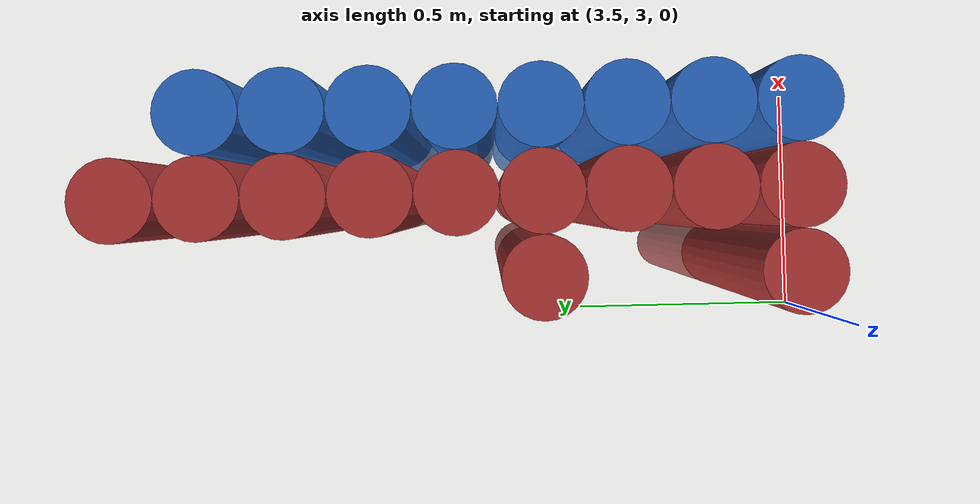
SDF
<sdf version="1.6">
 <world name="default">
  <model name="ground_plane">
   <static>1</static>
   <link name="link">
    <collision name="collision">
     <geometry><plane><normal>0 0 1</normal><size>100 100</size></plane></geometry>
     <surface><friction><ode><mu>100</mu><mu2>50</mu2></ode></friction></surface>
    </collision>
    <visual name="visual">
     <cast_shadows>0</cast_shadows>
     <geometry><plane><normal>0 0 1</normal><size>100 100</size></plane></geometry>
     <material>
      <script><uri>file://media/materials/scripts/gazebo.material</uri><name>Gazebo/Grey</name></script>
     </material>
    </visual>
   </link>
  </model>
  <model name="unit_cylinder_156">
   <static>1</static>
   <pose>3.925000 3.175000 0.000000 0.000000 0.000000 0.000000</pose>
   <link name="link">
    <inertial>
     <mass>1</mass>
     <inertia><ixx>0.145833</ixx><ixy>0</ixy><ixz>0</ixz><iyy>0.145833</iyy><iyz>0</iyz><izz>0.125</izz></inertia>
    </inertial>
    <collision name="collision">
     <geometry><cylinder><radius>0.075000</radius><length>1.5</length></cylinder></geometry>
    </collision>
    <visual name="visual">
     <geometry><cylinder><radius>0.075000</radius><length>1.5</length></cylinder></geometry>
     <material>
      <ambient>0.152000 0.379000 0.720000 1</ambient>
      <diffuse>0.152000 0.379000 0.720000 1</diffuse>
     </material>
     <material>
      <script><name>Gazebo/Grey</name><uri>file://media/materials/scripts/gazebo.material</uri></script>
     </material>
    </visual>
   </link>
  </model>
  <model name="unit_cylinder_158">
   <static>1</static>
   <pose>3.925000 3.325000 0.000000 0.000000 0.000000 0.000000</pose>
   <link name="link">
    <inertial>
     <mass>1</mass>
     <inertia><ixx>0.145833</ixx><ixy>0</ixy><ixz>0</ixz><iyy>0.145833</iyy><iyz>0</iyz><izz>0.125</izz></inertia>
    </inertial>
    <collision name="collision">
     <geometry><cylinder><radius>0.075000</radius><length>1.5</length></cylinder></geometry>
    </collision>
    <visual name="visual">
     <geometry><cylinder><radius>0.075000</radius><length>1.5</length></cylinder></geometry>
     <material>
      <ambient>0.152000 0.379000 0.720000 1</ambient>
      <diffuse>0.152000 0.379000 0.720000 1</diffuse>
     </material>
     <material>
      <script><name>Gazebo/Grey</name><uri>file://media/materials/scripts/gazebo.material</uri></script>
     </material>
    </visual>
   </link>
  </model>
  <model name="unit_cylinder_160">
   <static>1</static>
   <pose>3.925000 3.475000 0.000000 0.000000 0.000000 0.000000</pose>
   <link name="link">
    <inertial>
     <mass>1</mass>
     <inertia><ixx>0.145833</ixx><ixy>0</ixy><ixz>0</ixz><iyy>0.145833</iyy><iyz>0</iyz><izz>0.125</izz></inertia>
    </inertial>
    <collision name="collision">
     <geometry><cylinder><radius>0.075000</radius><length>1.5</length></cylinder></geometry>
    </collision>
    <visual name="visual">
     <geometry><cylinder><radius>0.075000</radius><length>1.5</length></cylinder></geometry>
     <material>
      <ambient>0.152000 0.379000 0.720000 1</ambient>
      <diffuse>0.152000 0.379000 0.720000 1</diffuse>
     </material>
     <material>
      <script><name>Gazebo/Grey</name><uri>file://media/materials/scripts/gazebo.material</uri></script>
     </material>
    </visual>
   </link>
  </model>
  <model name="unit_cylinder_162">
   <static>1</static>
   <pose>3.925000 3.625000 0.000000 0.000000 0.000000 0.000000</pose>
   <link name="link">
    <inertial>
     <mass>1</mass>
     <inertia><ixx>0.145833</ixx><ixy>0</ixy><ixz>0</ixz><iyy>0.145833</iyy><iyz>0</iyz><izz>0.125</izz></inertia>
    </inertial>
    <collision name="collision">
     <geometry><cylinder><radius>0.075000</radius><length>1.5</length></cylinder></geometry>
    </collision>
    <visual name="visual">
     <geometry><cylinder><radius>0.075000</radius><length>1.5</length></cylinder></geometry>
     <material>
      <ambient>0.152000 0.379000 0.720000 1</ambient>
      <diffuse>0.152000 0.379000 0.720000 1</diffuse>
     </material>
     <material>
      <script><name>Gazebo/Grey</name><uri>file://media/materials/scripts/gazebo.material</uri></script>
     </material>
    </visual>
   </link>
  </model>
  <model name="unit_cylinder_164">
   <static>1</static>
   <pose>3.925000 3.775000 0.000000 0.000000 0.000000 0.000000</pose>
   <link name="link">
    <inertial>
     <mass>1</mass>
     <inertia><ixx>0.145833</ixx><ixy>0</ixy><ixz>0</ixz><iyy>0.145833</iyy><iyz>0</iyz><izz>0.125</izz></inertia>
    </inertial>
    <collision name="collision">
     <geometry><cylinder><radius>0.075000</radius><length>1.5</length></cylinder></geometry>
    </collision>
    <visual name="visual">
     <geometry><cylinder><radius>0.075000</radius><length>1.5</length></cylinder></geometry>
     <material>
      <ambient>0.152000 0.379000 0.720000 1</ambient>
      <diffuse>0.152000 0.379000 0.720000 1</diffuse>
     </material>
     <material>
      <script><name>Gazebo/Grey</name><uri>file://media/materials/scripts/gazebo.material</uri></script>
     </material>
    </visual>
   </link>
  </model>
  <model name="unit_cylinder_166">
   <static>1</static>
   <pose>3.925000 3.925000 0.000000 0.000000 0.000000 0.000000</pose>
   <link name="link">
    <inertial>
     <mass>1</mass>
     <inertia><ixx>0.145833</ixx><ixy>0</ixy><ixz>0</ixz><iyy>0.145833</iyy><iyz>0</iyz><izz>0.125</izz></inertia>
    </inertial>
    <collision name="collision">
     <geometry><cylinder><radius>0.075000</radius><length>1.5</length></cylinder></geometry>
    </collision>
    <visual name="visual">
     <geometry><cylinder><radius>0.075000</radius><length>1.5</length></cylinder></geometry>
     <material>
      <ambient>0.152000 0.379000 0.720000 1</ambient>
      <diffuse>0.152000 0.379000 0.720000 1</diffuse>
     </material>
     <material>
      <script><name>Gazebo/Grey</name><uri>file://media/materials/scripts/gazebo.material</uri></script>
     </material>
    </visual>
   </link>
  </model>
  <model name="unit_cylinder_168">
   <static>1</static>
   <pose>3.925000 4.075000 0.000000 0.000000 0.000000 0.000000</pose>
   <link name="link">
    <inertial>
     <mass>1</mass>
     <inertia><ixx>0.145833</ixx><ixy>0</ixy><ixz>0</ixz><iyy>0.145833</iyy><iyz>0</iyz><izz>0.125</izz></inertia>
    </inertial>
    <collision name="collision">
     <geometry><cylinder><radius>0.075000</radius><length>1.5</length></cylinder></geometry>
    </collision>
    <visual name="visual">
     <geometry><cylinder><radius>0.075000</radius><length>1.5</length></cylinder></geometry>
     <material>
      <ambient>0.152000 0.379000 0.720000 1</ambient>
      <diffuse>0.152000 0.379000 0.720000 1</diffuse>
     </material>
     <material>
      <script><name>Gazebo/Grey</name><uri>file://media/materials/scripts/gazebo.material</uri></script>
     </material>
    </visual>
   </link>
  </model>
  <model name="unit_cylinder_170">
   <static>1</static>
   <pose>3.925000 4.225000 0.000000 0.000000 0.000000 0.000000</pose>
   <link name="link">
    <inertial>
     <mass>1</mass>
     <inertia><ixx>0.145833</ixx><ixy>0</ixy><ixz>0</ixz><iyy>0.145833</iyy><iyz>0</iyz><izz>0.125</izz></inertia>
    </inertial>
    <collision name="collision">
     <geometry><cylinder><radius>0.075000</radius><length>1.5</length></cylinder></geometry>
    </collision>
    <visual name="visual">
     <geometry><cylinder><radius>0.075000</radius><length>1.5</length></cylinder></geometry>
     <material>
      <ambient>0.152000 0.379000 0.720000 1</ambient>
      <diffuse>0.152000 0.379000 0.720000 1</diffuse>
     </material>
     <material>
      <script><name>Gazebo/Grey</name><uri>file://media/materials/scripts/gazebo.material</uri></script>
     </material>
    </visual>
   </link>
  </model>
  <model name="unit_cylinder_312">
   <static>1</static>
   <pose>3.625000 3.175000 0.000000 0.000000 0.000000 0.000000</pose>
   <link name="link">
    <inertial>
     <mass>1</mass>
     <inertia><ixx>0.145833</ixx><ixy>0</ixy><ixz>0</ixz><iyy>0.145833</iyy><iyz>0</iyz><izz>0.125</izz></inertia>
    </inertial>
    <collision name="collision">
     <geometry><cylinder><radius>0.075000</radius><length>1.5</length></cylinder></geometry>
    </collision>
    <visual name="visual">
     <geometry><cylinder><radius>0.075000</radius><length>1.5</length></cylinder></geometry>
     <material>
      <ambient>0.648000 0.192000 0.192000 1</ambient>
      <diffuse>0.648000 0.192000 0.192000 1</diffuse>
     </material>
     <material>
      <script><name>Gazebo/Grey</name><uri>file://media/materials/scripts/gazebo.material</uri></script>
     </material>
    </visual>
   </link>
  </model>
  <model name="unit_cylinder_313">
   <static>1</static>
   <pose>3.625000 3.625000 0.000000 0.000000 0.000000 0.000000</pose>
   <link name="link">
    <inertial>
     <mass>1</mass>
     <inertia><ixx>0.145833</ixx><ixy>0</ixy><ixz>0</ixz><iyy>0.145833</iyy><iyz>0</iyz><izz>0.125</izz></inertia>
    </inertial>
    <collision name="collision">
     <geometry><cylinder><radius>0.075000</radius><length>1.5</length></cylinder></geometry>
    </collision>
    <visual name="visual">
     <geometry><cylinder><radius>0.075000</radius><length>1.5</length></cylinder></geometry>
     <material>
      <ambient>0.648000 0.192000 0.192000 1</ambient>
      <diffuse>0.648000 0.192000 0.192000 1</diffuse>
     </material>
     <material>
      <script><name>Gazebo/Grey</name><uri>file://media/materials/scripts/gazebo.material</uri></script>
     </material>
    </visual>
   </link>
  </model>
  <model name="unit_cylinder_318">
   <static>1</static>
   <pose>3.775000 3.175000 0.000000 0.000000 0.000000 0.000000</pose>
   <link name="link">
    <inertial>
     <mass>1</mass>
     <inertia><ixx>0.145833</ixx><ixy>0</ixy><ixz>0</ixz><iyy>0.145833</iyy><iyz>0</iyz><izz>0.125</izz></inertia>
    </inertial>
    <collision name="collision">
     <geometry><cylinder><radius>0.075000</radius><length>1.5</length></cylinder></geometry>
    </collision>
    <visual name="visual">
     <geometry><cylinder><radius>0.075000</radius><length>1.5</length></cylinder></geometry>
     <material>
      <ambient>0.648000 0.192000 0.192000 1</ambient>
      <diffuse>0.648000 0.192000 0.192000 1</diffuse>
     </material>
     <material>
      <script><name>Gazebo/Grey</name><uri>file://media/materials/scripts/gazebo.material</uri></script>
     </material>
    </visual>
   </link>
  </model>
  <model name="unit_cylinder_319">
   <static>1</static>
   <pose>3.775000 3.325000 0.000000 0.000000 0.000000 0.000000</pose>
   <link name="link">
    <inertial>
     <mass>1</mass>
     <inertia><ixx>0.145833</ixx><ixy>0</ixy><ixz>0</ixz><iyy>0.145833</iyy><iyz>0</iyz><izz>0.125</izz></inertia>
    </inertial>
    <collision name="collision">
     <geometry><cylinder><radius>0.075000</radius><length>1.5</length></cylinder></geometry>
    </collision>
    <visual name="visual">
     <geometry><cylinder><radius>0.075000</radius><length>1.5</length></cylinder></geometry>
     <material>
      <ambient>0.648000 0.192000 0.192000 1</ambient>
      <diffuse>0.648000 0.192000 0.192000 1</diffuse>
     </material>
     <material>
      <script><name>Gazebo/Grey</name><uri>file://media/materials/scripts/gazebo.material</uri></script>
     </material>
    </visual>
   </link>
  </model>
  <model name="unit_cylinder_320">
   <static>1</static>
   <pose>3.775000 3.475000 0.000000 0.000000 0.000000 0.000000</pose>
   <link name="link">
    <inertial>
     <mass>1</mass>
     <inertia><ixx>0.145833</ixx><ixy>0</ixy><ixz>0</ixz><iyy>0.145833</iyy><iyz>0</iyz><izz>0.125</izz></inertia>
    </inertial>
    <collision name="collision">
     <geometry><cylinder><radius>0.075000</radius><length>1.5</length></cylinder></geometry>
    </collision>
    <visual name="visual">
     <geometry><cylinder><radius>0.075000</radius><length>1.5</length></cylinder></geometry>
     <material>
      <ambient>0.648000 0.192000 0.192000 1</ambient>
      <diffuse>0.648000 0.192000 0.192000 1</diffuse>
     </material>
     <material>
      <script><name>Gazebo/Grey</name><uri>file://media/materials/scripts/gazebo.material</uri></script>
     </material>
    </visual>
   </link>
  </model>
  <model name="unit_cylinder_321">
   <static>1</static>
   <pose>3.775000 3.625000 0.000000 0.000000 0.000000 0.000000</pose>
   <link name="link">
    <inertial>
     <mass>1</mass>
     <inertia><ixx>0.145833</ixx><ixy>0</ixy><ixz>0</ixz><iyy>0.145833</iyy><iyz>0</iyz><izz>0.125</izz></inertia>
    </inertial>
    <collision name="collision">
     <geometry><cylinder><radius>0.075000</radius><length>1.5</length></cylinder></geometry>
    </collision>
    <visual name="visual">
     <geometry><cylinder><radius>0.075000</radius><length>1.5</length></cylinder></geometry>
     <material>
      <ambient>0.648000 0.192000 0.192000 1</ambient>
      <diffuse>0.648000 0.192000 0.192000 1</diffuse>
     </material>
     <material>
      <script><name>Gazebo/Grey</name><uri>file://media/materials/scripts/gazebo.material</uri></script>
     </material>
    </visual>
   </link>
  </model>
  <model name="unit_cylinder_322">
   <static>1</static>
   <pose>3.775000 3.775000 0.000000 0.000000 0.000000 0.000000</pose>
   <link name="link">
    <inertial>
     <mass>1</mass>
     <inertia><ixx>0.145833</ixx><ixy>0</ixy><ixz>0</ixz><iyy>0.145833</iyy><iyz>0</iyz><izz>0.125</izz></inertia>
    </inertial>
    <collision name="collision">
     <geometry><cylinder><radius>0.075000</radius><length>1.5</length></cylinder></geometry>
    </collision>
    <visual name="visual">
     <geometry><cylinder><radius>0.075000</radius><length>1.5</length></cylinder></geometry>
     <material>
      <ambient>0.648000 0.192000 0.192000 1</ambient>
      <diffuse>0.648000 0.192000 0.192000 1</diffuse>
     </material>
     <material>
      <script><name>Gazebo/Grey</name><uri>file://media/materials/scripts/gazebo.material</uri></script>
     </material>
    </visual>
   </link>
  </model>
  <model name="unit_cylinder_323">
   <static>1</static>
   <pose>3.775000 3.925000 0.000000 0.000000 0.000000 0.000000</pose>
   <link name="link">
    <inertial>
     <mass>1</mass>
     <inertia><ixx>0.145833</ixx><ixy>0</ixy><ixz>0</ixz><iyy>0.145833</iyy><iyz>0</iyz><izz>0.125</izz></inertia>
    </inertial>
    <collision name="collision">
     <geometry><cylinder><radius>0.075000</radius><length>1.5</length></cylinder></geometry>
    </collision>
    <visual name="visual">
     <geometry><cylinder><radius>0.075000</radius><length>1.5</length></cylinder></geometry>
     <material>
      <ambient>0.648000 0.192000 0.192000 1</ambient>
      <diffuse>0.648000 0.192000 0.192000 1</diffuse>
     </material>
     <material>
      <script><name>Gazebo/Grey</name><uri>file://media/materials/scripts/gazebo.material</uri></script>
     </material>
    </visual>
   </link>
  </model>
  <model name="unit_cylinder_324">
   <static>1</static>
   <pose>3.775000 4.075000 0.000000 0.000000 0.000000 0.000000</pose>
   <link name="link">
    <inertial>
     <mass>1</mass>
     <inertia><ixx>0.145833</ixx><ixy>0</ixy><ixz>0</ixz><iyy>0.145833</iyy><iyz>0</iyz><izz>0.125</izz></inertia>
    </inertial>
    <collision name="collision">
     <geometry><cylinder><radius>0.075000</radius><length>1.5</length></cylinder></geometry>
    </collision>
    <visual name="visual">
     <geometry><cylinder><radius>0.075000</radius><length>1.5</length></cylinder></geometry>
     <material>
      <ambient>0.648000 0.192000 0.192000 1</ambient>
      <diffuse>0.648000 0.192000 0.192000 1</diffuse>
     </material>
     <material>
      <script><name>Gazebo/Grey</name><uri>file://media/materials/scripts/gazebo.material</uri></script>
     </material>
    </visual>
   </link>
  </model>
  <model name="unit_cylinder_325">
   <static>1</static>
   <pose>3.775000 4.225000 0.000000 0.000000 0.000000 0.000000</pose>
   <link name="link">
    <inertial>
     <mass>1</mass>
     <inertia><ixx>0.145833</ixx><ixy>0</ixy><ixz>0</ixz><iyy>0.145833</iyy><iyz>0</iyz><izz>0.125</izz></inertia>
    </inertial>
    <collision name="collision">
     <geometry><cylinder><radius>0.075000</radius><length>1.5</length></cylinder></geometry>
    </collision>
    <visual name="visual">
     <geometry><cylinder><radius>0.075000</radius><length>1.5</length></cylinder></geometry>
     <material>
      <ambient>0.648000 0.192000 0.192000 1</ambient>
      <diffuse>0.648000 0.192000 0.192000 1</diffuse>
     </material>
     <material>
      <script><name>Gazebo/Grey</name><uri>file://media/materials/scripts/gazebo.material</uri></script>
     </material>
    </visual>
   </link>
  </model>
  <model name="unit_cylinder_326">
   <static>1</static>
   <pose>3.775000 4.375000 0.000000 0.000000 0.000000 0.000000</pose>
   <link name="link">
    <inertial>
     <mass>1</mass>
     <inertia><ixx>0.145833</ixx><ixy>0</ixy><ixz>0</ixz><iyy>0.145833</iyy><iyz>0</iyz><izz>0.125</izz></inertia>
    </inertial>
    <collision name="collision">
     <geometry><cylinder><radius>0.075000</radius><length>1.5</length></cylinder></geometry>
    </collision>
    <visual name="visual">
     <geometry><cylinder><radius>0.075000</radius><length>1.5</length></cylinder></geometry>
     <material>
      <ambient>0.648000 0.192000 0.192000 1</ambient>
      <diffuse>0.648000 0.192000 0.192000 1</diffuse>
     </material>
     <material>
      <script><name>Gazebo/Grey</name><uri>file://media/materials/scripts/gazebo.material</uri></script>
     </material>
    </visual>
   </link>
  </model>
  <model name="unit_cylinder_363">
   <static>1</static>
   <pose>3.925000 3.175000 0.000000 0.000000 0.000000 0.000000</pose>
   <link name="link">
    <inertial>
     <mass>1</mass>
     <inertia><ixx>0.145833</ixx><ixy>0</ixy><ixz>0</ixz><iyy>0.145833</iyy><iyz>0</iyz><izz>0.125</izz></inertia>
    </inertial>
    <collision name="collision">
     <geometry><cylinder><radius>0.075000</radius><length>1.5</length></cylinder></geometry>
    </collision>
    <visual name="visual">
     <geometry><cylinder><radius>0.075000</radius><length>1.5</length></cylinder></geometry>
     <material>
      <ambient>0.152000 0.379000 0.720000 1</ambient>
      <diffuse>0.152000 0.379000 0.720000 1</diffuse>
     </material>
     <material>
      <script><name>Gazebo/Grey</name><uri>file://media/materials/scripts/gazebo.material</uri></script>
     </material>
    </visual>
   </link>
  </model>
  <model name="unit_cylinder_364">
   <static>1</static>
   <pose>3.925000 3.325000 0.000000 0.000000 0.000000 0.000000</pose>
   <link name="link">
    <inertial>
     <mass>1</mass>
     <inertia><ixx>0.145833</ixx><ixy>0</ixy><ixz>0</ixz><iyy>0.145833</iyy><iyz>0</iyz><izz>0.125</izz></inertia>
    </inertial>
    <collision name="collision">
     <geometry><cylinder><radius>0.075000</radius><length>1.5</length></cylinder></geometry>
    </collision>
    <visual name="visual">
     <geometry><cylinder><radius>0.075000</radius><length>1.5</length></cylinder></geometry>
     <material>
      <ambient>0.152000 0.379000 0.720000 1</ambient>
      <diffuse>0.152000 0.379000 0.720000 1</diffuse>
     </material>
     <material>
      <script><name>Gazebo/Grey</name><uri>file://media/materials/scripts/gazebo.material</uri></script>
     </material>
    </visual>
   </link>
  </model>
  <model name="unit_cylinder_365">
   <static>1</static>
   <pose>3.925000 3.475000 0.000000 0.000000 0.000000 0.000000</pose>
   <link name="link">
    <inertial>
     <mass>1</mass>
     <inertia><ixx>0.145833</ixx><ixy>0</ixy><ixz>0</ixz><iyy>0.145833</iyy><iyz>0</iyz><izz>0.125</izz></inertia>
    </inertial>
    <collision name="collision">
     <geometry><cylinder><radius>0.075000</radius><length>1.5</length></cylinder></geometry>
    </collision>
    <visual name="visual">
     <geometry><cylinder><radius>0.075000</radius><length>1.5</length></cylinder></geometry>
     <material>
      <ambient>0.152000 0.379000 0.720000 1</ambient>
      <diffuse>0.152000 0.379000 0.720000 1</diffuse>
     </material>
     <material>
      <script><name>Gazebo/Grey</name><uri>file://media/materials/scripts/gazebo.material</uri></script>
     </material>
    </visual>
   </link>
  </model>
  <model name="unit_cylinder_366">
   <static>1</static>
   <pose>3.925000 3.625000 0.000000 0.000000 0.000000 0.000000</pose>
   <link name="link">
    <inertial>
     <mass>1</mass>
     <inertia><ixx>0.145833</ixx><ixy>0</ixy><ixz>0</ixz><iyy>0.145833</iyy><iyz>0</iyz><izz>0.125</izz></inertia>
    </inertial>
    <collision name="collision">
     <geometry><cylinder><radius>0.075000</radius><length>1.5</length></cylinder></geometry>
    </collision>
    <visual name="visual">
     <geometry><cylinder><radius>0.075000</radius><length>1.5</length></cylinder></geometry>
     <material>
      <ambient>0.152000 0.379000 0.720000 1</ambient>
      <diffuse>0.152000 0.379000 0.720000 1</diffuse>
     </material>
     <material>
      <script><name>Gazebo/Grey</name><uri>file://media/materials/scripts/gazebo.material</uri></script>
     </material>
    </visual>
   </link>
  </model>
  <model name="unit_cylinder_367">
   <static>1</static>
   <pose>3.925000 3.775000 0.000000 0.000000 0.000000 0.000000</pose>
   <link name="link">
    <inertial>
     <mass>1</mass>
     <inertia><ixx>0.145833</ixx><ixy>0</ixy><ixz>0</ixz><iyy>0.145833</iyy><iyz>0</iyz><izz>0.125</izz></inertia>
    </inertial>
    <collision name="collision">
     <geometry><cylinder><radius>0.075000</radius><length>1.5</length></cylinder></geometry>
    </collision>
    <visual name="visual">
     <geometry><cylinder><radius>0.075000</radius><length>1.5</length></cylinder></geometry>
     <material>
      <ambient>0.152000 0.379000 0.720000 1</ambient>
      <diffuse>0.152000 0.379000 0.720000 1</diffuse>
     </material>
     <material>
      <script><name>Gazebo/Grey</name><uri>file://media/materials/scripts/gazebo.material</uri></script>
     </material>
    </visual>
   </link>
  </model>
  <model name="unit_cylinder_368">
   <static>1</static>
   <pose>3.925000 3.925000 0.000000 0.000000 0.000000 0.000000</pose>
   <link name="link">
    <inertial>
     <mass>1</mass>
     <inertia><ixx>0.145833</ixx><ixy>0</ixy><ixz>0</ixz><iyy>0.145833</iyy><iyz>0</iyz><izz>0.125</izz></inertia>
    </inertial>
    <collision name="collision">
     <geometry><cylinder><radius>0.075000</radius><length>1.5</length></cylinder></geometry>
    </collision>
    <visual name="visual">
     <geometry><cylinder><radius>0.075000</radius><length>1.5</length></cylinder></geometry>
     <material>
      <ambient>0.152000 0.379000 0.720000 1</ambient>
      <diffuse>0.152000 0.379000 0.720000 1</diffuse>
     </material>
     <material>
      <script><name>Gazebo/Grey</name><uri>file://media/materials/scripts/gazebo.material</uri></script>
     </material>
    </visual>
   </link>
  </model>
  <model name="unit_cylinder_369">
   <static>1</static>
   <pose>3.925000 4.075000 0.000000 0.000000 0.000000 0.000000</pose>
   <link name="link">
    <inertial>
     <mass>1</mass>
     <inertia><ixx>0.145833</ixx><ixy>0</ixy><ixz>0</ixz><iyy>0.145833</iyy><iyz>0</iyz><izz>0.125</izz></inertia>
    </inertial>
    <collision name="collision">
     <geometry><cylinder><radius>0.075000</radius><length>1.5</length></cylinder></geometry>
    </collision>
    <visual name="visual">
     <geometry><cylinder><radius>0.075000</radius><length>1.5</length></cylinder></geometry>
     <material>
      <ambient>0.152000 0.379000 0.720000 1</ambient>
      <diffuse>0.152000 0.379000 0.720000 1</diffuse>
     </material>
     <material>
      <script><name>Gazebo/Grey</name><uri>file://media/materials/scripts/gazebo.material</uri></script>
     </material>
    </visual>
   </link>
  </model>
  <model name="unit_cylinder_370">
   <static>1</static>
   <pose>3.925000 4.225000 0.000000 0.000000 0.000000 0.000000</pose>
   <link name="link">
    <inertial>
     <mass>1</mass>
     <inertia><ixx>0.145833</ixx><ixy>0</ixy><ixz>0</ixz><iyy>0.145833</iyy><iyz>0</iyz><izz>0.125</izz></inertia>
    </inertial>
    <collision name="collision">
     <geometry><cylinder><radius>0.075000</radius><length>1.5</length></cylinder></geometry>
    </collision>
    <visual name="visual">
     <geometry><cylinder><radius>0.075000</radius><length>1.5</length></cylinder></geometry>
     <material>
      <ambient>0.152000 0.379000 0.720000 1</ambient>
      <diffuse>0.152000 0.379000 0.720000 1</diffuse>
     </material>
     <material>
      <script><name>Gazebo/Grey</name><uri>file://media/materials/scripts/gazebo.material</uri></script>
     </material>
    </visual>
   </link>
  </model>
 </world>
</sdf>
